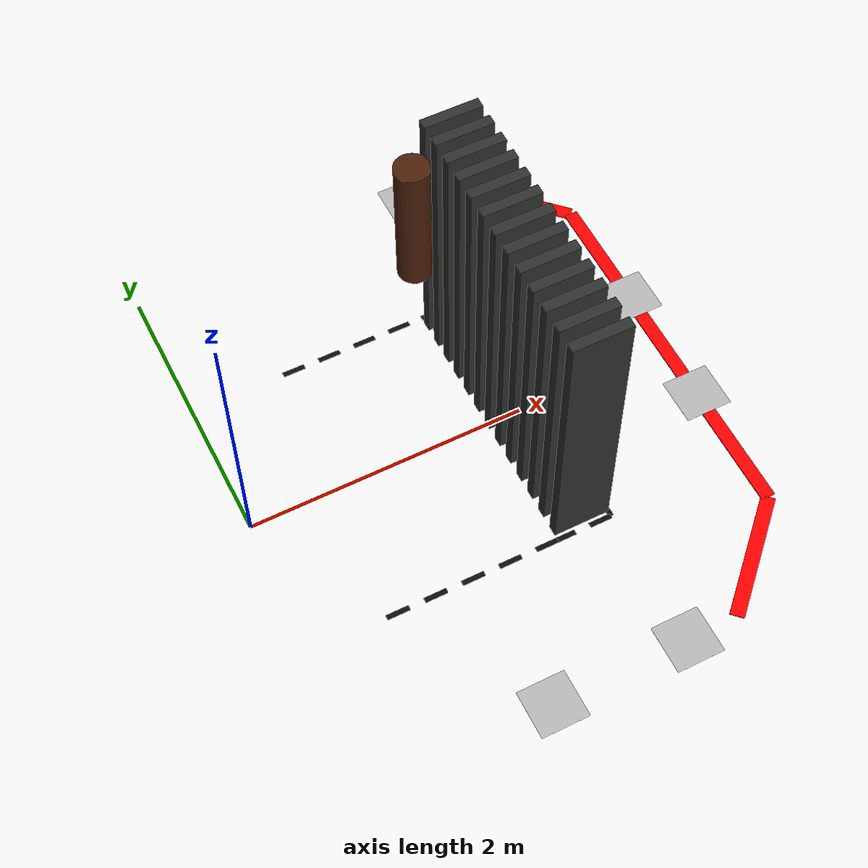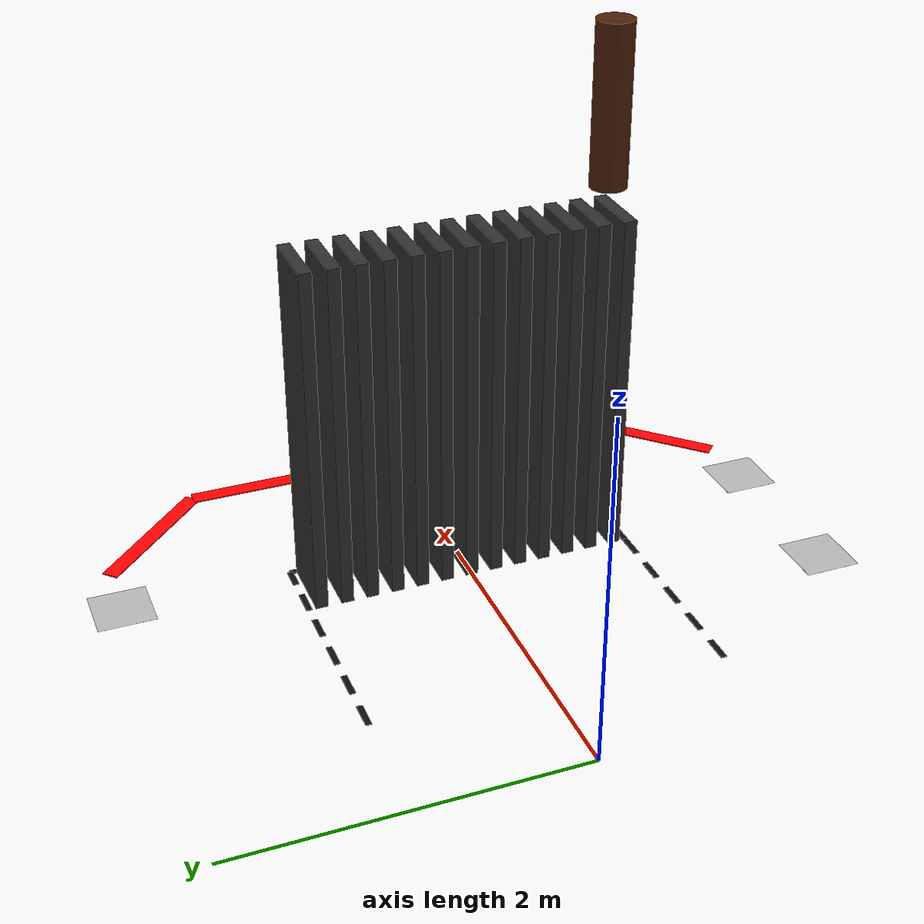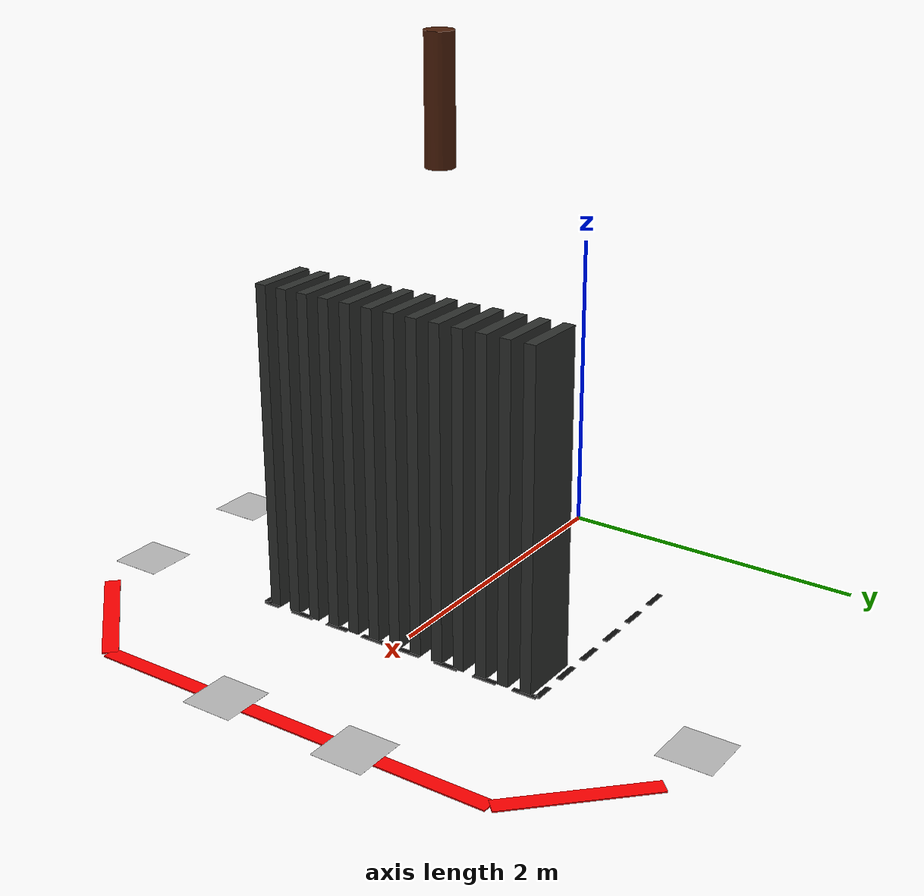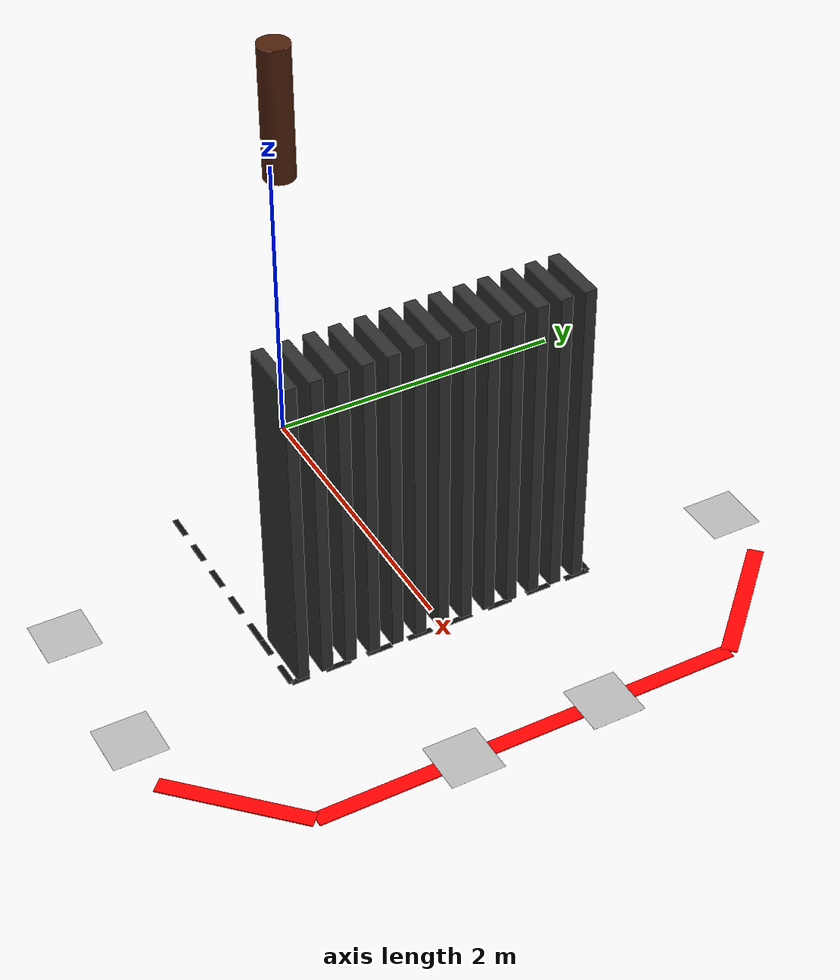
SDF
<sdf version="1.6">
 <world name="transformer_infographic_qr_world">
  <model name="radiator_fin_0">
   <static>true</static>
   <pose>1.95000 -0.92308 1.05000 0 0 0</pose>
   <link name="link">
    <collision name="collision"><geometry><box><size>0.40000 0.07385 2.10000</size></box></geometry></collision>
    <visual name="visual">
     <geometry><box><size>0.40000 0.07385 2.10000</size></box></geometry>
     <material><ambient>0.18 0.19 0.18 1</ambient><diffuse>0.18 0.19 0.18 1</diffuse></material>
    </visual>
   </link>
  </model>
  <model name="radiator_fin_1">
   <static>true</static>
   <pose>1.95000 -0.76923 1.05000 0 0 0</pose>
   <link name="link">
    <collision name="collision"><geometry><box><size>0.40000 0.07385 2.10000</size></box></geometry></collision>
    <visual name="visual">
     <geometry><box><size>0.40000 0.07385 2.10000</size></box></geometry>
     <material><ambient>0.18 0.19 0.18 1</ambient><diffuse>0.18 0.19 0.18 1</diffuse></material>
    </visual>
   </link>
  </model>
  <model name="radiator_fin_2">
   <static>true</static>
   <pose>1.95000 -0.61538 1.05000 0 0 0</pose>
   <link name="link">
    <collision name="collision"><geometry><box><size>0.40000 0.07385 2.10000</size></box></geometry></collision>
    <visual name="visual">
     <geometry><box><size>0.40000 0.07385 2.10000</size></box></geometry>
     <material><ambient>0.18 0.19 0.18 1</ambient><diffuse>0.18 0.19 0.18 1</diffuse></material>
    </visual>
   </link>
  </model>
  <model name="radiator_fin_3">
   <static>true</static>
   <pose>1.95000 -0.46154 1.05000 0 0 0</pose>
   <link name="link">
    <collision name="collision"><geometry><box><size>0.40000 0.07385 2.10000</size></box></geometry></collision>
    <visual name="visual">
     <geometry><box><size>0.40000 0.07385 2.10000</size></box></geometry>
     <material><ambient>0.18 0.19 0.18 1</ambient><diffuse>0.18 0.19 0.18 1</diffuse></material>
    </visual>
   </link>
  </model>
  <model name="radiator_fin_4">
   <static>true</static>
   <pose>1.95000 -0.30769 1.05000 0 0 0</pose>
   <link name="link">
    <collision name="collision"><geometry><box><size>0.40000 0.07385 2.10000</size></box></geometry></collision>
    <visual name="visual">
     <geometry><box><size>0.40000 0.07385 2.10000</size></box></geometry>
     <material><ambient>0.18 0.19 0.18 1</ambient><diffuse>0.18 0.19 0.18 1</diffuse></material>
    </visual>
   </link>
  </model>
  <model name="radiator_fin_5">
   <static>true</static>
   <pose>1.95000 -0.15385 1.05000 0 0 0</pose>
   <link name="link">
    <collision name="collision"><geometry><box><size>0.40000 0.07385 2.10000</size></box></geometry></collision>
    <visual name="visual">
     <geometry><box><size>0.40000 0.07385 2.10000</size></box></geometry>
     <material><ambient>0.18 0.19 0.18 1</ambient><diffuse>0.18 0.19 0.18 1</diffuse></material>
    </visual>
   </link>
  </model>
  <model name="radiator_fin_6">
   <static>true</static>
   <pose>1.95000 0.00000 1.05000 0 0 0</pose>
   <link name="link">
    <collision name="collision"><geometry><box><size>0.40000 0.07385 2.10000</size></box></geometry></collision>
    <visual name="visual">
     <geometry><box><size>0.40000 0.07385 2.10000</size></box></geometry>
     <material><ambient>0.18 0.19 0.18 1</ambient><diffuse>0.18 0.19 0.18 1</diffuse></material>
    </visual>
   </link>
  </model>
  <model name="radiator_fin_7">
   <static>true</static>
   <pose>1.95000 0.15385 1.05000 0 0 0</pose>
   <link name="link">
    <collision name="collision"><geometry><box><size>0.40000 0.07385 2.10000</size></box></geometry></collision>
    <visual name="visual">
     <geometry><box><size>0.40000 0.07385 2.10000</size></box></geometry>
     <material><ambient>0.18 0.19 0.18 1</ambient><diffuse>0.18 0.19 0.18 1</diffuse></material>
    </visual>
   </link>
  </model>
  <model name="radiator_fin_8">
   <static>true</static>
   <pose>1.95000 0.30769 1.05000 0 0 0</pose>
   <link name="link">
    <collision name="collision"><geometry><box><size>0.40000 0.07385 2.10000</size></box></geometry></collision>
    <visual name="visual">
     <geometry><box><size>0.40000 0.07385 2.10000</size></box></geometry>
     <material><ambient>0.18 0.19 0.18 1</ambient><diffuse>0.18 0.19 0.18 1</diffuse></material>
    </visual>
   </link>
  </model>
  <model name="radiator_fin_9">
   <static>true</static>
   <pose>1.95000 0.46154 1.05000 0 0 0</pose>
   <link name="link">
    <collision name="collision"><geometry><box><size>0.40000 0.07385 2.10000</size></box></geometry></collision>
    <visual name="visual">
     <geometry><box><size>0.40000 0.07385 2.10000</size></box></geometry>
     <material><ambient>0.18 0.19 0.18 1</ambient><diffuse>0.18 0.19 0.18 1</diffuse></material>
    </visual>
   </link>
  </model>
  <model name="radiator_fin_10">
   <static>true</static>
   <pose>1.95000 0.61538 1.05000 0 0 0</pose>
   <link name="link">
    <collision name="collision"><geometry><box><size>0.40000 0.07385 2.10000</size></box></geometry></collision>
    <visual name="visual">
     <geometry><box><size>0.40000 0.07385 2.10000</size></box></geometry>
     <material><ambient>0.18 0.19 0.18 1</ambient><diffuse>0.18 0.19 0.18 1</diffuse></material>
    </visual>
   </link>
  </model>
  <model name="radiator_fin_11">
   <static>true</static>
   <pose>1.95000 0.76923 1.05000 0 0 0</pose>
   <link name="link">
    <collision name="collision"><geometry><box><size>0.40000 0.07385 2.10000</size></box></geometry></collision>
    <visual name="visual">
     <geometry><box><size>0.40000 0.07385 2.10000</size></box></geometry>
     <material><ambient>0.18 0.19 0.18 1</ambient><diffuse>0.18 0.19 0.18 1</diffuse></material>
    </visual>
   </link>
  </model>
  <model name="radiator_fin_12">
   <static>true</static>
   <pose>1.95000 0.92308 1.05000 0 0 0</pose>
   <link name="link">
    <collision name="collision"><geometry><box><size>0.40000 0.07385 2.10000</size></box></geometry></collision>
    <visual name="visual">
     <geometry><box><size>0.40000 0.07385 2.10000</size></box></geometry>
     <material><ambient>0.18 0.19 0.18 1</ambient><diffuse>0.18 0.19 0.18 1</diffuse></material>
    </visual>
   </link>
  </model>
  <model name="bushing_3">
   <static>true</static>
   <pose>1.05000 -0.42000 3.05000 0.00000 0.00000 0.00000</pose>
   <link name="link">
    <collision name="collision">
     <geometry><cylinder><radius>0.09500</radius><length>0.82000</length></cylinder></geometry>
    </collision>
    <visual name="visual">
     <geometry><cylinder><radius>0.09500</radius><length>0.82000</length></cylinder></geometry>
     <material><ambient>0.30 0.12 0.04 1</ambient><diffuse>0.30 0.12 0.04 1</diffuse></material>
    </visual>
   </link>
  </model>
  <model name="boundary_dash_17">
   <static>true</static>
   <pose>0.76000 1.00000 0.00300 0 0 0.00000</pose>
   <link name="link">
    <visual name="visual">
     <cast_shadows>false</cast_shadows>
     <geometry><box><size>0.16000 0.03500 0.00600</size></box></geometry>
     <material>
      <ambient>0.05 0.05 0.05 1</ambient>
      <diffuse>0.05 0.05 0.05 1</diffuse>
      <emissive>0.05 0.05 0.05 1</emissive>
     </material>
    </visual>
   </link>
  </model>
  <model name="boundary_dash_18">
   <static>true</static>
   <pose>1.03000 1.00000 0.00300 0 0 0.00000</pose>
   <link name="link">
    <visual name="visual">
     <cast_shadows>false</cast_shadows>
     <geometry><box><size>0.16000 0.03500 0.00600</size></box></geometry>
     <material>
      <ambient>0.05 0.05 0.05 1</ambient>
      <diffuse>0.05 0.05 0.05 1</diffuse>
      <emissive>0.05 0.05 0.05 1</emissive>
     </material>
    </visual>
   </link>
  </model>
  <model name="boundary_dash_19">
   <static>true</static>
   <pose>1.30000 1.00000 0.00300 0 0 0.00000</pose>
   <link name="link">
    <visual name="visual">
     <cast_shadows>false</cast_shadows>
     <geometry><box><size>0.16000 0.03500 0.00600</size></box></geometry>
     <material>
      <ambient>0.05 0.05 0.05 1</ambient>
      <diffuse>0.05 0.05 0.05 1</diffuse>
      <emissive>0.05 0.05 0.05 1</emissive>
     </material>
    </visual>
   </link>
  </model>
  <model name="boundary_dash_20">
   <static>true</static>
   <pose>1.57000 1.00000 0.00300 0 0 0.00000</pose>
   <link name="link">
    <visual name="visual">
     <cast_shadows>false</cast_shadows>
     <geometry><box><size>0.16000 0.03500 0.00600</size></box></geometry>
     <material>
      <ambient>0.05 0.05 0.05 1</ambient>
      <diffuse>0.05 0.05 0.05 1</diffuse>
      <emissive>0.05 0.05 0.05 1</emissive>
     </material>
    </visual>
   </link>
  </model>
  <model name="boundary_dash_21">
   <static>true</static>
   <pose>1.83000 1.00000 0.00300 0 0 0.00000</pose>
   <link name="link">
    <visual name="visual">
     <cast_shadows>false</cast_shadows>
     <geometry><box><size>0.16000 0.03500 0.00600</size></box></geometry>
     <material>
      <ambient>0.05 0.05 0.05 1</ambient>
      <diffuse>0.05 0.05 0.05 1</diffuse>
      <emissive>0.05 0.05 0.05 1</emissive>
     </material>
    </visual>
   </link>
  </model>
  <model name="boundary_dash_22">
   <static>true</static>
   <pose>2.08500 1.00000 0.00300 0 0 0.00000</pose>
   <link name="link">
    <visual name="visual">
     <cast_shadows>false</cast_shadows>
     <geometry><box><size>0.13000 0.03500 0.00600</size></box></geometry>
     <material>
      <ambient>0.05 0.05 0.05 1</ambient>
      <diffuse>0.05 0.05 0.05 1</diffuse>
      <emissive>0.05 0.05 0.05 1</emissive>
     </material>
    </visual>
   </link>
  </model>
  <model name="boundary_dash_23">
   <static>true</static>
   <pose>2.15000 0.92000 0.00300 0 0 -1.57080</pose>
   <link name="link">
    <visual name="visual">
     <cast_shadows>false</cast_shadows>
     <geometry><box><size>0.16000 0.03500 0.00600</size></box></geometry>
     <material>
      <ambient>0.05 0.05 0.05 1</ambient>
      <diffuse>0.05 0.05 0.05 1</diffuse>
      <emissive>0.05 0.05 0.05 1</emissive>
     </material>
    </visual>
   </link>
  </model>
  <model name="boundary_dash_24">
   <static>true</static>
   <pose>2.15000 0.65000 0.00300 0 0 -1.57080</pose>
   <link name="link">
    <visual name="visual">
     <cast_shadows>false</cast_shadows>
     <geometry><box><size>0.16000 0.03500 0.00600</size></box></geometry>
     <material>
      <ambient>0.05 0.05 0.05 1</ambient>
      <diffuse>0.05 0.05 0.05 1</diffuse>
      <emissive>0.05 0.05 0.05 1</emissive>
     </material>
    </visual>
   </link>
  </model>
  <model name="boundary_dash_25">
   <static>true</static>
   <pose>2.15000 0.38000 0.00300 0 0 -1.57080</pose>
   <link name="link">
    <visual name="visual">
     <cast_shadows>false</cast_shadows>
     <geometry><box><size>0.16000 0.03500 0.00600</size></box></geometry>
     <material>
      <ambient>0.05 0.05 0.05 1</ambient>
      <diffuse>0.05 0.05 0.05 1</diffuse>
      <emissive>0.05 0.05 0.05 1</emissive>
     </material>
    </visual>
   </link>
  </model>
  <model name="boundary_dash_26">
   <static>true</static>
   <pose>2.15000 0.11000 0.00300 0 0 -1.57080</pose>
   <link name="link">
    <visual name="visual">
     <cast_shadows>false</cast_shadows>
     <geometry><box><size>0.16000 0.03500 0.00600</size></box></geometry>
     <material>
      <ambient>0.05 0.05 0.05 1</ambient>
      <diffuse>0.05 0.05 0.05 1</diffuse>
      <emissive>0.05 0.05 0.05 1</emissive>
     </material>
    </visual>
   </link>
  </model>
  <model name="boundary_dash_27">
   <static>true</static>
   <pose>2.15000 -0.16000 0.00300 0 0 -1.57080</pose>
   <link name="link">
    <visual name="visual">
     <cast_shadows>false</cast_shadows>
     <geometry><box><size>0.16000 0.03500 0.00600</size></box></geometry>
     <material>
      <ambient>0.05 0.05 0.05 1</ambient>
      <diffuse>0.05 0.05 0.05 1</diffuse>
      <emissive>0.05 0.05 0.05 1</emissive>
     </material>
    </visual>
   </link>
  </model>
  <model name="boundary_dash_28">
   <static>true</static>
   <pose>2.15000 -0.43000 0.00300 0 0 -1.57080</pose>
   <link name="link">
    <visual name="visual">
     <cast_shadows>false</cast_shadows>
     <geometry><box><size>0.16000 0.03500 0.00600</size></box></geometry>
     <material>
      <ambient>0.05 0.05 0.05 1</ambient>
      <diffuse>0.05 0.05 0.05 1</diffuse>
      <emissive>0.05 0.05 0.05 1</emissive>
     </material>
    </visual>
   </link>
  </model>
  <model name="boundary_dash_29">
   <static>true</static>
   <pose>2.15000 -0.70000 0.00300 0 0 -1.57080</pose>
   <link name="link">
    <visual name="visual">
     <cast_shadows>false</cast_shadows>
     <geometry><box><size>0.16000 0.03500 0.00600</size></box></geometry>
     <material>
      <ambient>0.05 0.05 0.05 1</ambient>
      <diffuse>0.05 0.05 0.05 1</diffuse>
      <emissive>0.05 0.05 0.05 1</emissive>
     </material>
    </visual>
   </link>
  </model>
  <model name="boundary_dash_30">
   <static>true</static>
   <pose>2.15000 -0.94500 0.00300 0 0 -1.57080</pose>
   <link name="link">
    <visual name="visual">
     <cast_shadows>false</cast_shadows>
     <geometry><box><size>0.11000 0.03500 0.00600</size></box></geometry>
     <material>
      <ambient>0.05 0.05 0.05 1</ambient>
      <diffuse>0.05 0.05 0.05 1</diffuse>
      <emissive>0.05 0.05 0.05 1</emissive>
     </material>
    </visual>
   </link>
  </model>
  <model name="boundary_dash_31">
   <static>true</static>
   <pose>2.07000 -1.00000 0.00300 0 0 3.14159</pose>
   <link name="link">
    <visual name="visual">
     <cast_shadows>false</cast_shadows>
     <geometry><box><size>0.16000 0.03500 0.00600</size></box></geometry>
     <material>
      <ambient>0.05 0.05 0.05 1</ambient>
      <diffuse>0.05 0.05 0.05 1</diffuse>
      <emissive>0.05 0.05 0.05 1</emissive>
     </material>
    </visual>
   </link>
  </model>
  <model name="boundary_dash_32">
   <static>true</static>
   <pose>1.81500 -1.00000 0.00300 0 0 3.14159</pose>
   <link name="link">
    <visual name="visual">
     <cast_shadows>false</cast_shadows>
     <geometry><box><size>0.13000 0.03500 0.00600</size></box></geometry>
     <material>
      <ambient>0.05 0.05 0.05 1</ambient>
      <diffuse>0.05 0.05 0.05 1</diffuse>
      <emissive>0.05 0.05 0.05 1</emissive>
     </material>
    </visual>
   </link>
  </model>
  <model name="boundary_dash_33">
   <static>true</static>
   <pose>1.67000 -1.00000 0.00300 0 0 3.14159</pose>
   <link name="link">
    <visual name="visual">
     <cast_shadows>false</cast_shadows>
     <geometry><box><size>0.16000 0.03500 0.00600</size></box></geometry>
     <material>
      <ambient>0.05 0.05 0.05 1</ambient>
      <diffuse>0.05 0.05 0.05 1</diffuse>
      <emissive>0.05 0.05 0.05 1</emissive>
     </material>
    </visual>
   </link>
  </model>
  <model name="boundary_dash_34">
   <static>true</static>
   <pose>1.40000 -1.00000 0.00300 0 0 3.14159</pose>
   <link name="link">
    <visual name="visual">
     <cast_shadows>false</cast_shadows>
     <geometry><box><size>0.16000 0.03500 0.00600</size></box></geometry>
     <material>
      <ambient>0.05 0.05 0.05 1</ambient>
      <diffuse>0.05 0.05 0.05 1</diffuse>
      <emissive>0.05 0.05 0.05 1</emissive>
     </material>
    </visual>
   </link>
  </model>
  <model name="boundary_dash_35">
   <static>true</static>
   <pose>1.13000 -1.00000 0.00300 0 0 3.14159</pose>
   <link name="link">
    <visual name="visual">
     <cast_shadows>false</cast_shadows>
     <geometry><box><size>0.16000 0.03500 0.00600</size></box></geometry>
     <material>
      <ambient>0.05 0.05 0.05 1</ambient>
      <diffuse>0.05 0.05 0.05 1</diffuse>
      <emissive>0.05 0.05 0.05 1</emissive>
     </material>
    </visual>
   </link>
  </model>
  <model name="boundary_dash_36">
   <static>true</static>
   <pose>0.86000 -1.00000 0.00300 0 0 3.14159</pose>
   <link name="link">
    <visual name="visual">
     <cast_shadows>false</cast_shadows>
     <geometry><box><size>0.16000 0.03500 0.00600</size></box></geometry>
     <material>
      <ambient>0.05 0.05 0.05 1</ambient>
      <diffuse>0.05 0.05 0.05 1</diffuse>
      <emissive>0.05 0.05 0.05 1</emissive>
     </material>
    </visual>
   </link>
  </model>
  <model name="boundary_dash_37">
   <static>true</static>
   <pose>0.59000 -1.00000 0.00300 0 0 3.14159</pose>
   <link name="link">
    <visual name="visual">
     <cast_shadows>false</cast_shadows>
     <geometry><box><size>0.16000 0.03500 0.00600</size></box></geometry>
     <material>
      <ambient>0.05 0.05 0.05 1</ambient>
      <diffuse>0.05 0.05 0.05 1</diffuse>
      <emissive>0.05 0.05 0.05 1</emissive>
     </material>
    </visual>
   </link>
  </model>
  <model name="prescribed_contour_1">
   <static>true</static>
   <pose>2.82500 -1.67500 0.00400 0 0 0.78540</pose>
   <link name="link">
    <visual name="visual">
     <cast_shadows>false</cast_shadows>
     <geometry><box><size>0.91924 0.10000 0.00800</size></box></geometry>
     <material><ambient>1 0 0 1</ambient><diffuse>1 0 0 1</diffuse><emissive>1 0 0 1</emissive></material>
    </visual>
   </link>
  </model>
  <model name="prescribed_contour_2">
   <static>true</static>
   <pose>3.15000 0.00000 0.00400 0 0 1.57080</pose>
   <link name="link">
    <visual name="visual">
     <cast_shadows>false</cast_shadows>
     <geometry><box><size>2.70000 0.10000 0.00800</size></box></geometry>
     <material><ambient>1 0 0 1</ambient><diffuse>1 0 0 1</diffuse><emissive>1 0 0 1</emissive></material>
    </visual>
   </link>
  </model>
  <model name="prescribed_contour_3">
   <static>true</static>
   <pose>2.82500 1.67500 0.00400 0 0 2.35619</pose>
   <link name="link">
    <visual name="visual">
     <cast_shadows>false</cast_shadows>
     <geometry><box><size>0.91924 0.10000 0.00800</size></box></geometry>
     <material><ambient>1 0 0 1</ambient><diffuse>1 0 0 1</diffuse><emissive>1 0 0 1</emissive></material>
    </visual>
   </link>
  </model>
  <include>
   <uri>model://qr_marker_04</uri>
   <name>qr_marker_04</name>
   <pose>1.16600 -2.00000 0.01500 0 0 0.00000</pose>
  </include>
  <include>
   <uri>model://qr_marker_05</uri>
   <name>qr_marker_05</name>
   <pose>2.13200 -2.00000 0.01500 0 0 0.00000</pose>
  </include>
  <include>
   <uri>model://qr_marker_06</uri>
   <name>qr_marker_06</name>
   <pose>3.15000 -0.43200 0.01500 0 0 1.57080</pose>
  </include>
  <include>
   <uri>model://qr_marker_07</uri>
   <name>qr_marker_07</name>
   <pose>3.15000 0.48600 0.01500 0 0 1.57080</pose>
  </include>
  <include>
   <uri>model://qr_marker_08</uri>
   <name>qr_marker_08</name>
   <pose>2.13200 2.00000 0.01500 0 0 3.14159</pose>
  </include>
 </world>
</sdf>
